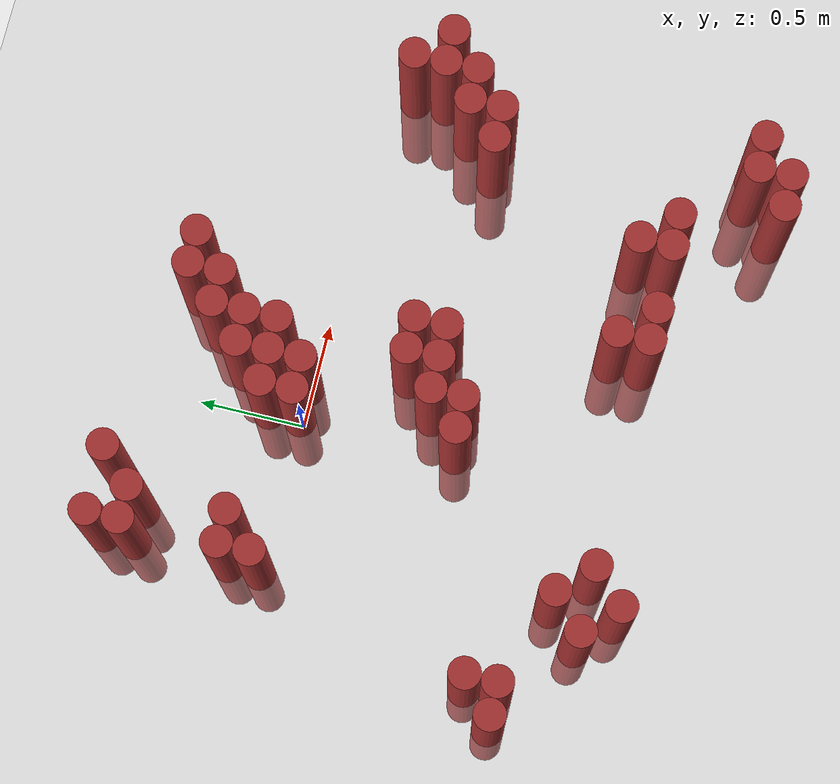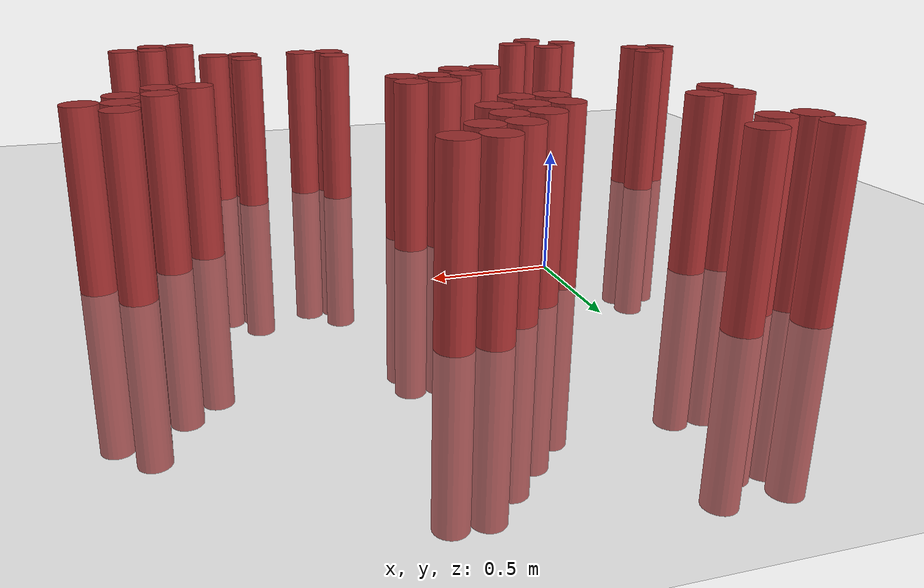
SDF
<sdf version="1.6">
 <world name="default">
  <model name="ground_plane">
   <static>1</static>
   <link name="link">
    <collision name="collision">
     <geometry><plane><normal>0 0 1</normal><size>100 100</size></plane></geometry>
     <surface><friction><ode><mu>100</mu><mu2>50</mu2></ode></friction></surface>
    </collision>
    <visual name="visual">
     <cast_shadows>0</cast_shadows>
     <geometry><plane><normal>0 0 1</normal><size>100 100</size></plane></geometry>
     <material>
      <script><uri>file://media/materials/scripts/gazebo.material</uri><name>Gazebo/Grey</name></script>
     </material>
    </visual>
   </link>
  </model>
  <model name="unit_cylinder_322">
   <static>1</static>
   <pose>-1.175000 -1.175000 0.000000 0.000000 0.000000 0.000000</pose>
   <link name="link">
    <inertial>
     <mass>1</mass>
     <inertia><ixx>0.145833</ixx><ixy>0</ixy><ixz>0</ixz><iyy>0.145833</iyy><iyz>0</iyz><izz>0.125</izz></inertia>
    </inertial>
    <collision name="collision">
     <geometry><cylinder><radius>0.075000</radius><length>1.5</length></cylinder></geometry>
    </collision>
    <visual name="visual">
     <geometry><cylinder><radius>0.075000</radius><length>1.5</length></cylinder></geometry>
     <material>
      <ambient>0.648000 0.192000 0.192000 1</ambient>
      <diffuse>0.648000 0.192000 0.192000 1</diffuse>
     </material>
     <material>
      <script><name>Gazebo/Grey</name><uri>file://media/materials/scripts/gazebo.material</uri></script>
     </material>
    </visual>
   </link>
  </model>
  <model name="unit_cylinder_326">
   <static>1</static>
   <pose>-1.025000 -1.175000 0.000000 0.000000 0.000000 0.000000</pose>
   <link name="link">
    <inertial>
     <mass>1</mass>
     <inertia><ixx>0.145833</ixx><ixy>0</ixy><ixz>0</ixz><iyy>0.145833</iyy><iyz>0</iyz><izz>0.125</izz></inertia>
    </inertial>
    <collision name="collision">
     <geometry><cylinder><radius>0.075000</radius><length>1.5</length></cylinder></geometry>
    </collision>
    <visual name="visual">
     <geometry><cylinder><radius>0.075000</radius><length>1.5</length></cylinder></geometry>
     <material>
      <ambient>0.648000 0.192000 0.192000 1</ambient>
      <diffuse>0.648000 0.192000 0.192000 1</diffuse>
     </material>
     <material>
      <script><name>Gazebo/Grey</name><uri>file://media/materials/scripts/gazebo.material</uri></script>
     </material>
    </visual>
   </link>
  </model>
  <model name="unit_cylinder_327">
   <static>1</static>
   <pose>-1.025000 -1.025000 0.000000 0.000000 0.000000 0.000000</pose>
   <link name="link">
    <inertial>
     <mass>1</mass>
     <inertia><ixx>0.145833</ixx><ixy>0</ixy><ixz>0</ixz><iyy>0.145833</iyy><iyz>0</iyz><izz>0.125</izz></inertia>
    </inertial>
    <collision name="collision">
     <geometry><cylinder><radius>0.075000</radius><length>1.5</length></cylinder></geometry>
    </collision>
    <visual name="visual">
     <geometry><cylinder><radius>0.075000</radius><length>1.5</length></cylinder></geometry>
     <material>
      <ambient>0.648000 0.192000 0.192000 1</ambient>
      <diffuse>0.648000 0.192000 0.192000 1</diffuse>
     </material>
     <material>
      <script><name>Gazebo/Grey</name><uri>file://media/materials/scripts/gazebo.material</uri></script>
     </material>
    </visual>
   </link>
  </model>
  <model name="unit_cylinder_334">
   <static>1</static>
   <pose>-0.725000 -1.475000 0.000000 0.000000 0.000000 0.000000</pose>
   <link name="link">
    <inertial>
     <mass>1</mass>
     <inertia><ixx>0.145833</ixx><ixy>0</ixy><ixz>0</ixz><iyy>0.145833</iyy><iyz>0</iyz><izz>0.125</izz></inertia>
    </inertial>
    <collision name="collision">
     <geometry><cylinder><radius>0.075000</radius><length>1.5</length></cylinder></geometry>
    </collision>
    <visual name="visual">
     <geometry><cylinder><radius>0.075000</radius><length>1.5</length></cylinder></geometry>
     <material>
      <ambient>0.648000 0.192000 0.192000 1</ambient>
      <diffuse>0.648000 0.192000 0.192000 1</diffuse>
     </material>
     <material>
      <script><name>Gazebo/Grey</name><uri>file://media/materials/scripts/gazebo.material</uri></script>
     </material>
    </visual>
   </link>
  </model>
  <model name="unit_cylinder_335">
   <static>1</static>
   <pose>-0.725000 0.025000 0.000000 0.000000 0.000000 0.000000</pose>
   <link name="link">
    <inertial>
     <mass>1</mass>
     <inertia><ixx>0.145833</ixx><ixy>0</ixy><ixz>0</ixz><iyy>0.145833</iyy><iyz>0</iyz><izz>0.125</izz></inertia>
    </inertial>
    <collision name="collision">
     <geometry><cylinder><radius>0.075000</radius><length>1.5</length></cylinder></geometry>
    </collision>
    <visual name="visual">
     <geometry><cylinder><radius>0.075000</radius><length>1.5</length></cylinder></geometry>
     <material>
      <ambient>0.648000 0.192000 0.192000 1</ambient>
      <diffuse>0.648000 0.192000 0.192000 1</diffuse>
     </material>
     <material>
      <script><name>Gazebo/Grey</name><uri>file://media/materials/scripts/gazebo.material</uri></script>
     </material>
    </visual>
   </link>
  </model>
  <model name="unit_cylinder_336">
   <static>1</static>
   <pose>-0.725000 0.175000 0.000000 0.000000 0.000000 0.000000</pose>
   <link name="link">
    <inertial>
     <mass>1</mass>
     <inertia><ixx>0.145833</ixx><ixy>0</ixy><ixz>0</ixz><iyy>0.145833</iyy><iyz>0</iyz><izz>0.125</izz></inertia>
    </inertial>
    <collision name="collision">
     <geometry><cylinder><radius>0.075000</radius><length>1.5</length></cylinder></geometry>
    </collision>
    <visual name="visual">
     <geometry><cylinder><radius>0.075000</radius><length>1.5</length></cylinder></geometry>
     <material>
      <ambient>0.648000 0.192000 0.192000 1</ambient>
      <diffuse>0.648000 0.192000 0.192000 1</diffuse>
     </material>
     <material>
      <script><name>Gazebo/Grey</name><uri>file://media/materials/scripts/gazebo.material</uri></script>
     </material>
    </visual>
   </link>
  </model>
  <model name="unit_cylinder_337">
   <static>1</static>
   <pose>-0.725000 0.625000 0.000000 0.000000 0.000000 0.000000</pose>
   <link name="link">
    <inertial>
     <mass>1</mass>
     <inertia><ixx>0.145833</ixx><ixy>0</ixy><ixz>0</ixz><iyy>0.145833</iyy><iyz>0</iyz><izz>0.125</izz></inertia>
    </inertial>
    <collision name="collision">
     <geometry><cylinder><radius>0.075000</radius><length>1.5</length></cylinder></geometry>
    </collision>
    <visual name="visual">
     <geometry><cylinder><radius>0.075000</radius><length>1.5</length></cylinder></geometry>
     <material>
      <ambient>0.648000 0.192000 0.192000 1</ambient>
      <diffuse>0.648000 0.192000 0.192000 1</diffuse>
     </material>
     <material>
      <script><name>Gazebo/Grey</name><uri>file://media/materials/scripts/gazebo.material</uri></script>
     </material>
    </visual>
   </link>
  </model>
  <model name="unit_cylinder_338">
   <static>1</static>
   <pose>-0.725000 0.775000 0.000000 0.000000 0.000000 0.000000</pose>
   <link name="link">
    <inertial>
     <mass>1</mass>
     <inertia><ixx>0.145833</ixx><ixy>0</ixy><ixz>0</ixz><iyy>0.145833</iyy><iyz>0</iyz><izz>0.125</izz></inertia>
    </inertial>
    <collision name="collision">
     <geometry><cylinder><radius>0.075000</radius><length>1.5</length></cylinder></geometry>
    </collision>
    <visual name="visual">
     <geometry><cylinder><radius>0.075000</radius><length>1.5</length></cylinder></geometry>
     <material>
      <ambient>0.648000 0.192000 0.192000 1</ambient>
      <diffuse>0.648000 0.192000 0.192000 1</diffuse>
     </material>
     <material>
      <script><name>Gazebo/Grey</name><uri>file://media/materials/scripts/gazebo.material</uri></script>
     </material>
    </visual>
   </link>
  </model>
  <model name="unit_cylinder_343">
   <static>1</static>
   <pose>-0.575000 -1.625000 0.000000 0.000000 0.000000 0.000000</pose>
   <link name="link">
    <inertial>
     <mass>1</mass>
     <inertia><ixx>0.145833</ixx><ixy>0</ixy><ixz>0</ixz><iyy>0.145833</iyy><iyz>0</iyz><izz>0.125</izz></inertia>
    </inertial>
    <collision name="collision">
     <geometry><cylinder><radius>0.075000</radius><length>1.5</length></cylinder></geometry>
    </collision>
    <visual name="visual">
     <geometry><cylinder><radius>0.075000</radius><length>1.5</length></cylinder></geometry>
     <material>
      <ambient>0.648000 0.192000 0.192000 1</ambient>
      <diffuse>0.648000 0.192000 0.192000 1</diffuse>
     </material>
     <material>
      <script><name>Gazebo/Grey</name><uri>file://media/materials/scripts/gazebo.material</uri></script>
     </material>
    </visual>
   </link>
  </model>
  <model name="unit_cylinder_344">
   <static>1</static>
   <pose>-0.575000 -1.325000 0.000000 0.000000 0.000000 0.000000</pose>
   <link name="link">
    <inertial>
     <mass>1</mass>
     <inertia><ixx>0.145833</ixx><ixy>0</ixy><ixz>0</ixz><iyy>0.145833</iyy><iyz>0</iyz><izz>0.125</izz></inertia>
    </inertial>
    <collision name="collision">
     <geometry><cylinder><radius>0.075000</radius><length>1.5</length></cylinder></geometry>
    </collision>
    <visual name="visual">
     <geometry><cylinder><radius>0.075000</radius><length>1.5</length></cylinder></geometry>
     <material>
      <ambient>0.648000 0.192000 0.192000 1</ambient>
      <diffuse>0.648000 0.192000 0.192000 1</diffuse>
     </material>
     <material>
      <script><name>Gazebo/Grey</name><uri>file://media/materials/scripts/gazebo.material</uri></script>
     </material>
    </visual>
   </link>
  </model>
  <model name="unit_cylinder_345">
   <static>1</static>
   <pose>-0.575000 0.175000 0.000000 0.000000 0.000000 0.000000</pose>
   <link name="link">
    <inertial>
     <mass>1</mass>
     <inertia><ixx>0.145833</ixx><ixy>0</ixy><ixz>0</ixz><iyy>0.145833</iyy><iyz>0</iyz><izz>0.125</izz></inertia>
    </inertial>
    <collision name="collision">
     <geometry><cylinder><radius>0.075000</radius><length>1.5</length></cylinder></geometry>
    </collision>
    <visual name="visual">
     <geometry><cylinder><radius>0.075000</radius><length>1.5</length></cylinder></geometry>
     <material>
      <ambient>0.648000 0.192000 0.192000 1</ambient>
      <diffuse>0.648000 0.192000 0.192000 1</diffuse>
     </material>
     <material>
      <script><name>Gazebo/Grey</name><uri>file://media/materials/scripts/gazebo.material</uri></script>
     </material>
    </visual>
   </link>
  </model>
  <model name="unit_cylinder_346">
   <static>1</static>
   <pose>-0.575000 0.625000 0.000000 0.000000 0.000000 0.000000</pose>
   <link name="link">
    <inertial>
     <mass>1</mass>
     <inertia><ixx>0.145833</ixx><ixy>0</ixy><ixz>0</ixz><iyy>0.145833</iyy><iyz>0</iyz><izz>0.125</izz></inertia>
    </inertial>
    <collision name="collision">
     <geometry><cylinder><radius>0.075000</radius><length>1.5</length></cylinder></geometry>
    </collision>
    <visual name="visual">
     <geometry><cylinder><radius>0.075000</radius><length>1.5</length></cylinder></geometry>
     <material>
      <ambient>0.648000 0.192000 0.192000 1</ambient>
      <diffuse>0.648000 0.192000 0.192000 1</diffuse>
     </material>
     <material>
      <script><name>Gazebo/Grey</name><uri>file://media/materials/scripts/gazebo.material</uri></script>
     </material>
    </visual>
   </link>
  </model>
  <model name="unit_cylinder_351">
   <static>1</static>
   <pose>-0.425000 -1.475000 0.000000 0.000000 0.000000 0.000000</pose>
   <link name="link">
    <inertial>
     <mass>1</mass>
     <inertia><ixx>0.145833</ixx><ixy>0</ixy><ixz>0</ixz><iyy>0.145833</iyy><iyz>0</iyz><izz>0.125</izz></inertia>
    </inertial>
    <collision name="collision">
     <geometry><cylinder><radius>0.075000</radius><length>1.5</length></cylinder></geometry>
    </collision>
    <visual name="visual">
     <geometry><cylinder><radius>0.075000</radius><length>1.5</length></cylinder></geometry>
     <material>
      <ambient>0.648000 0.192000 0.192000 1</ambient>
      <diffuse>0.648000 0.192000 0.192000 1</diffuse>
     </material>
     <material>
      <script><name>Gazebo/Grey</name><uri>file://media/materials/scripts/gazebo.material</uri></script>
     </material>
    </visual>
   </link>
  </model>
  <model name="unit_cylinder_352">
   <static>1</static>
   <pose>-0.425000 0.775000 0.000000 0.000000 0.000000 0.000000</pose>
   <link name="link">
    <inertial>
     <mass>1</mass>
     <inertia><ixx>0.145833</ixx><ixy>0</ixy><ixz>0</ixz><iyy>0.145833</iyy><iyz>0</iyz><izz>0.125</izz></inertia>
    </inertial>
    <collision name="collision">
     <geometry><cylinder><radius>0.075000</radius><length>1.5</length></cylinder></geometry>
    </collision>
    <visual name="visual">
     <geometry><cylinder><radius>0.075000</radius><length>1.5</length></cylinder></geometry>
     <material>
      <ambient>0.648000 0.192000 0.192000 1</ambient>
      <diffuse>0.648000 0.192000 0.192000 1</diffuse>
     </material>
     <material>
      <script><name>Gazebo/Grey</name><uri>file://media/materials/scripts/gazebo.material</uri></script>
     </material>
    </visual>
   </link>
  </model>
  <model name="unit_cylinder_361">
   <static>1</static>
   <pose>0.025000 -0.725000 0.000000 0.000000 0.000000 0.000000</pose>
   <link name="link">
    <inertial>
     <mass>1</mass>
     <inertia><ixx>0.145833</ixx><ixy>0</ixy><ixz>0</ixz><iyy>0.145833</iyy><iyz>0</iyz><izz>0.125</izz></inertia>
    </inertial>
    <collision name="collision">
     <geometry><cylinder><radius>0.075000</radius><length>1.5</length></cylinder></geometry>
    </collision>
    <visual name="visual">
     <geometry><cylinder><radius>0.075000</radius><length>1.5</length></cylinder></geometry>
     <material>
      <ambient>0.648000 0.192000 0.192000 1</ambient>
      <diffuse>0.648000 0.192000 0.192000 1</diffuse>
     </material>
     <material>
      <script><name>Gazebo/Grey</name><uri>file://media/materials/scripts/gazebo.material</uri></script>
     </material>
    </visual>
   </link>
  </model>
  <model name="unit_cylinder_362">
   <static>1</static>
   <pose>0.025000 0.025000 0.000000 0.000000 0.000000 0.000000</pose>
   <link name="link">
    <inertial>
     <mass>1</mass>
     <inertia><ixx>0.145833</ixx><ixy>0</ixy><ixz>0</ixz><iyy>0.145833</iyy><iyz>0</iyz><izz>0.125</izz></inertia>
    </inertial>
    <collision name="collision">
     <geometry><cylinder><radius>0.075000</radius><length>1.5</length></cylinder></geometry>
    </collision>
    <visual name="visual">
     <geometry><cylinder><radius>0.075000</radius><length>1.5</length></cylinder></geometry>
     <material>
      <ambient>0.648000 0.192000 0.192000 1</ambient>
      <diffuse>0.648000 0.192000 0.192000 1</diffuse>
     </material>
     <material>
      <script><name>Gazebo/Grey</name><uri>file://media/materials/scripts/gazebo.material</uri></script>
     </material>
    </visual>
   </link>
  </model>
  <model name="unit_cylinder_363">
   <static>1</static>
   <pose>0.025000 0.175000 0.000000 0.000000 0.000000 0.000000</pose>
   <link name="link">
    <inertial>
     <mass>1</mass>
     <inertia><ixx>0.145833</ixx><ixy>0</ixy><ixz>0</ixz><iyy>0.145833</iyy><iyz>0</iyz><izz>0.125</izz></inertia>
    </inertial>
    <collision name="collision">
     <geometry><cylinder><radius>0.075000</radius><length>1.5</length></cylinder></geometry>
    </collision>
    <visual name="visual">
     <geometry><cylinder><radius>0.075000</radius><length>1.5</length></cylinder></geometry>
     <material>
      <ambient>0.648000 0.192000 0.192000 1</ambient>
      <diffuse>0.648000 0.192000 0.192000 1</diffuse>
     </material>
     <material>
      <script><name>Gazebo/Grey</name><uri>file://media/materials/scripts/gazebo.material</uri></script>
     </material>
    </visual>
   </link>
  </model>
  <model name="unit_cylinder_364">
   <static>1</static>
   <pose>0.175000 -0.725000 0.000000 0.000000 0.000000 0.000000</pose>
   <link name="link">
    <inertial>
     <mass>1</mass>
     <inertia><ixx>0.145833</ixx><ixy>0</ixy><ixz>0</ixz><iyy>0.145833</iyy><iyz>0</iyz><izz>0.125</izz></inertia>
    </inertial>
    <collision name="collision">
     <geometry><cylinder><radius>0.075000</radius><length>1.5</length></cylinder></geometry>
    </collision>
    <visual name="visual">
     <geometry><cylinder><radius>0.075000</radius><length>1.5</length></cylinder></geometry>
     <material>
      <ambient>0.648000 0.192000 0.192000 1</ambient>
      <diffuse>0.648000 0.192000 0.192000 1</diffuse>
     </material>
     <material>
      <script><name>Gazebo/Grey</name><uri>file://media/materials/scripts/gazebo.material</uri></script>
     </material>
    </visual>
   </link>
  </model>
  <model name="unit_cylinder_365">
   <static>1</static>
   <pose>0.175000 -0.575000 0.000000 0.000000 0.000000 0.000000</pose>
   <link name="link">
    <inertial>
     <mass>1</mass>
     <inertia><ixx>0.145833</ixx><ixy>0</ixy><ixz>0</ixz><iyy>0.145833</iyy><iyz>0</iyz><izz>0.125</izz></inertia>
    </inertial>
    <collision name="collision">
     <geometry><cylinder><radius>0.075000</radius><length>1.5</length></cylinder></geometry>
    </collision>
    <visual name="visual">
     <geometry><cylinder><radius>0.075000</radius><length>1.5</length></cylinder></geometry>
     <material>
      <ambient>0.648000 0.192000 0.192000 1</ambient>
      <diffuse>0.648000 0.192000 0.192000 1</diffuse>
     </material>
     <material>
      <script><name>Gazebo/Grey</name><uri>file://media/materials/scripts/gazebo.material</uri></script>
     </material>
    </visual>
   </link>
  </model>
  <model name="unit_cylinder_366">
   <static>1</static>
   <pose>0.175000 0.025000 0.000000 0.000000 0.000000 0.000000</pose>
   <link name="link">
    <inertial>
     <mass>1</mass>
     <inertia><ixx>0.145833</ixx><ixy>0</ixy><ixz>0</ixz><iyy>0.145833</iyy><iyz>0</iyz><izz>0.125</izz></inertia>
    </inertial>
    <collision name="collision">
     <geometry><cylinder><radius>0.075000</radius><length>1.5</length></cylinder></geometry>
    </collision>
    <visual name="visual">
     <geometry><cylinder><radius>0.075000</radius><length>1.5</length></cylinder></geometry>
     <material>
      <ambient>0.648000 0.192000 0.192000 1</ambient>
      <diffuse>0.648000 0.192000 0.192000 1</diffuse>
     </material>
     <material>
      <script><name>Gazebo/Grey</name><uri>file://media/materials/scripts/gazebo.material</uri></script>
     </material>
    </visual>
   </link>
  </model>
  <model name="unit_cylinder_367">
   <static>1</static>
   <pose>0.175000 0.175000 0.000000 0.000000 0.000000 0.000000</pose>
   <link name="link">
    <inertial>
     <mass>1</mass>
     <inertia><ixx>0.145833</ixx><ixy>0</ixy><ixz>0</ixz><iyy>0.145833</iyy><iyz>0</iyz><izz>0.125</izz></inertia>
    </inertial>
    <collision name="collision">
     <geometry><cylinder><radius>0.075000</radius><length>1.5</length></cylinder></geometry>
    </collision>
    <visual name="visual">
     <geometry><cylinder><radius>0.075000</radius><length>1.5</length></cylinder></geometry>
     <material>
      <ambient>0.648000 0.192000 0.192000 1</ambient>
      <diffuse>0.648000 0.192000 0.192000 1</diffuse>
     </material>
     <material>
      <script><name>Gazebo/Grey</name><uri>file://media/materials/scripts/gazebo.material</uri></script>
     </material>
    </visual>
   </link>
  </model>
  <model name="unit_cylinder_368">
   <static>1</static>
   <pose>0.175000 0.325000 0.000000 0.000000 0.000000 0.000000</pose>
   <link name="link">
    <inertial>
     <mass>1</mass>
     <inertia><ixx>0.145833</ixx><ixy>0</ixy><ixz>0</ixz><iyy>0.145833</iyy><iyz>0</iyz><izz>0.125</izz></inertia>
    </inertial>
    <collision name="collision">
     <geometry><cylinder><radius>0.075000</radius><length>1.5</length></cylinder></geometry>
    </collision>
    <visual name="visual">
     <geometry><cylinder><radius>0.075000</radius><length>1.5</length></cylinder></geometry>
     <material>
      <ambient>0.648000 0.192000 0.192000 1</ambient>
      <diffuse>0.648000 0.192000 0.192000 1</diffuse>
     </material>
     <material>
      <script><name>Gazebo/Grey</name><uri>file://media/materials/scripts/gazebo.material</uri></script>
     </material>
    </visual>
   </link>
  </model>
  <model name="unit_cylinder_371">
   <static>1</static>
   <pose>0.325000 -0.575000 0.000000 0.000000 0.000000 0.000000</pose>
   <link name="link">
    <inertial>
     <mass>1</mass>
     <inertia><ixx>0.145833</ixx><ixy>0</ixy><ixz>0</ixz><iyy>0.145833</iyy><iyz>0</iyz><izz>0.125</izz></inertia>
    </inertial>
    <collision name="collision">
     <geometry><cylinder><radius>0.075000</radius><length>1.5</length></cylinder></geometry>
    </collision>
    <visual name="visual">
     <geometry><cylinder><radius>0.075000</radius><length>1.5</length></cylinder></geometry>
     <material>
      <ambient>0.648000 0.192000 0.192000 1</ambient>
      <diffuse>0.648000 0.192000 0.192000 1</diffuse>
     </material>
     <material>
      <script><name>Gazebo/Grey</name><uri>file://media/materials/scripts/gazebo.material</uri></script>
     </material>
    </visual>
   </link>
  </model>
  <model name="unit_cylinder_372">
   <static>1</static>
   <pose>0.325000 -0.425000 0.000000 0.000000 0.000000 0.000000</pose>
   <link name="link">
    <inertial>
     <mass>1</mass>
     <inertia><ixx>0.145833</ixx><ixy>0</ixy><ixz>0</ixz><iyy>0.145833</iyy><iyz>0</iyz><izz>0.125</izz></inertia>
    </inertial>
    <collision name="collision">
     <geometry><cylinder><radius>0.075000</radius><length>1.5</length></cylinder></geometry>
    </collision>
    <visual name="visual">
     <geometry><cylinder><radius>0.075000</radius><length>1.5</length></cylinder></geometry>
     <material>
      <ambient>0.648000 0.192000 0.192000 1</ambient>
      <diffuse>0.648000 0.192000 0.192000 1</diffuse>
     </material>
     <material>
      <script><name>Gazebo/Grey</name><uri>file://media/materials/scripts/gazebo.material</uri></script>
     </material>
    </visual>
   </link>
  </model>
  <model name="unit_cylinder_373">
   <static>1</static>
   <pose>0.325000 0.175000 0.000000 0.000000 0.000000 0.000000</pose>
   <link name="link">
    <inertial>
     <mass>1</mass>
     <inertia><ixx>0.145833</ixx><ixy>0</ixy><ixz>0</ixz><iyy>0.145833</iyy><iyz>0</iyz><izz>0.125</izz></inertia>
    </inertial>
    <collision name="collision">
     <geometry><cylinder><radius>0.075000</radius><length>1.5</length></cylinder></geometry>
    </collision>
    <visual name="visual">
     <geometry><cylinder><radius>0.075000</radius><length>1.5</length></cylinder></geometry>
     <material>
      <ambient>0.648000 0.192000 0.192000 1</ambient>
      <diffuse>0.648000 0.192000 0.192000 1</diffuse>
     </material>
     <material>
      <script><name>Gazebo/Grey</name><uri>file://media/materials/scripts/gazebo.material</uri></script>
     </material>
    </visual>
   </link>
  </model>
  <model name="unit_cylinder_374">
   <static>1</static>
   <pose>0.325000 0.325000 0.000000 0.000000 0.000000 0.000000</pose>
   <link name="link">
    <inertial>
     <mass>1</mass>
     <inertia><ixx>0.145833</ixx><ixy>0</ixy><ixz>0</ixz><iyy>0.145833</iyy><iyz>0</iyz><izz>0.125</izz></inertia>
    </inertial>
    <collision name="collision">
     <geometry><cylinder><radius>0.075000</radius><length>1.5</length></cylinder></geometry>
    </collision>
    <visual name="visual">
     <geometry><cylinder><radius>0.075000</radius><length>1.5</length></cylinder></geometry>
     <material>
      <ambient>0.648000 0.192000 0.192000 1</ambient>
      <diffuse>0.648000 0.192000 0.192000 1</diffuse>
     </material>
     <material>
      <script><name>Gazebo/Grey</name><uri>file://media/materials/scripts/gazebo.material</uri></script>
     </material>
    </visual>
   </link>
  </model>
  <model name="unit_cylinder_375">
   <static>1</static>
   <pose>0.325000 0.475000 0.000000 0.000000 0.000000 0.000000</pose>
   <link name="link">
    <inertial>
     <mass>1</mass>
     <inertia><ixx>0.145833</ixx><ixy>0</ixy><ixz>0</ixz><iyy>0.145833</iyy><iyz>0</iyz><izz>0.125</izz></inertia>
    </inertial>
    <collision name="collision">
     <geometry><cylinder><radius>0.075000</radius><length>1.5</length></cylinder></geometry>
    </collision>
    <visual name="visual">
     <geometry><cylinder><radius>0.075000</radius><length>1.5</length></cylinder></geometry>
     <material>
      <ambient>0.648000 0.192000 0.192000 1</ambient>
      <diffuse>0.648000 0.192000 0.192000 1</diffuse>
     </material>
     <material>
      <script><name>Gazebo/Grey</name><uri>file://media/materials/scripts/gazebo.material</uri></script>
     </material>
    </visual>
   </link>
  </model>
  <model name="unit_cylinder_380">
   <static>1</static>
   <pose>0.475000 -0.575000 0.000000 0.000000 0.000000 0.000000</pose>
   <link name="link">
    <inertial>
     <mass>1</mass>
     <inertia><ixx>0.145833</ixx><ixy>0</ixy><ixz>0</ixz><iyy>0.145833</iyy><iyz>0</iyz><izz>0.125</izz></inertia>
    </inertial>
    <collision name="collision">
     <geometry><cylinder><radius>0.075000</radius><length>1.5</length></cylinder></geometry>
    </collision>
    <visual name="visual">
     <geometry><cylinder><radius>0.075000</radius><length>1.5</length></cylinder></geometry>
     <material>
      <ambient>0.648000 0.192000 0.192000 1</ambient>
      <diffuse>0.648000 0.192000 0.192000 1</diffuse>
     </material>
     <material>
      <script><name>Gazebo/Grey</name><uri>file://media/materials/scripts/gazebo.material</uri></script>
     </material>
    </visual>
   </link>
  </model>
  <model name="unit_cylinder_381">
   <static>1</static>
   <pose>0.475000 -0.425000 0.000000 0.000000 0.000000 0.000000</pose>
   <link name="link">
    <inertial>
     <mass>1</mass>
     <inertia><ixx>0.145833</ixx><ixy>0</ixy><ixz>0</ixz><iyy>0.145833</iyy><iyz>0</iyz><izz>0.125</izz></inertia>
    </inertial>
    <collision name="collision">
     <geometry><cylinder><radius>0.075000</radius><length>1.5</length></cylinder></geometry>
    </collision>
    <visual name="visual">
     <geometry><cylinder><radius>0.075000</radius><length>1.5</length></cylinder></geometry>
     <material>
      <ambient>0.648000 0.192000 0.192000 1</ambient>
      <diffuse>0.648000 0.192000 0.192000 1</diffuse>
     </material>
     <material>
      <script><name>Gazebo/Grey</name><uri>file://media/materials/scripts/gazebo.material</uri></script>
     </material>
    </visual>
   </link>
  </model>
  <model name="unit_cylinder_382">
   <static>1</static>
   <pose>0.475000 0.475000 0.000000 0.000000 0.000000 0.000000</pose>
   <link name="link">
    <inertial>
     <mass>1</mass>
     <inertia><ixx>0.145833</ixx><ixy>0</ixy><ixz>0</ixz><iyy>0.145833</iyy><iyz>0</iyz><izz>0.125</izz></inertia>
    </inertial>
    <collision name="collision">
     <geometry><cylinder><radius>0.075000</radius><length>1.5</length></cylinder></geometry>
    </collision>
    <visual name="visual">
     <geometry><cylinder><radius>0.075000</radius><length>1.5</length></cylinder></geometry>
     <material>
      <ambient>0.648000 0.192000 0.192000 1</ambient>
      <diffuse>0.648000 0.192000 0.192000 1</diffuse>
     </material>
     <material>
      <script><name>Gazebo/Grey</name><uri>file://media/materials/scripts/gazebo.material</uri></script>
     </material>
    </visual>
   </link>
  </model>
  <model name="unit_cylinder_383">
   <static>1</static>
   <pose>0.475000 0.625000 0.000000 0.000000 0.000000 0.000000</pose>
   <link name="link">
    <inertial>
     <mass>1</mass>
     <inertia><ixx>0.145833</ixx><ixy>0</ixy><ixz>0</ixz><iyy>0.145833</iyy><iyz>0</iyz><izz>0.125</izz></inertia>
    </inertial>
    <collision name="collision">
     <geometry><cylinder><radius>0.075000</radius><length>1.5</length></cylinder></geometry>
    </collision>
    <visual name="visual">
     <geometry><cylinder><radius>0.075000</radius><length>1.5</length></cylinder></geometry>
     <material>
      <ambient>0.648000 0.192000 0.192000 1</ambient>
      <diffuse>0.648000 0.192000 0.192000 1</diffuse>
     </material>
     <material>
      <script><name>Gazebo/Grey</name><uri>file://media/materials/scripts/gazebo.material</uri></script>
     </material>
    </visual>
   </link>
  </model>
  <model name="unit_cylinder_385">
   <static>1</static>
   <pose>0.625000 -1.475000 0.000000 0.000000 0.000000 0.000000</pose>
   <link name="link">
    <inertial>
     <mass>1</mass>
     <inertia><ixx>0.145833</ixx><ixy>0</ixy><ixz>0</ixz><iyy>0.145833</iyy><iyz>0</iyz><izz>0.125</izz></inertia>
    </inertial>
    <collision name="collision">
     <geometry><cylinder><radius>0.075000</radius><length>1.5</length></cylinder></geometry>
    </collision>
    <visual name="visual">
     <geometry><cylinder><radius>0.075000</radius><length>1.5</length></cylinder></geometry>
     <material>
      <ambient>0.648000 0.192000 0.192000 1</ambient>
      <diffuse>0.648000 0.192000 0.192000 1</diffuse>
     </material>
     <material>
      <script><name>Gazebo/Grey</name><uri>file://media/materials/scripts/gazebo.material</uri></script>
     </material>
    </visual>
   </link>
  </model>
  <model name="unit_cylinder_386">
   <static>1</static>
   <pose>0.625000 -1.325000 0.000000 0.000000 0.000000 0.000000</pose>
   <link name="link">
    <inertial>
     <mass>1</mass>
     <inertia><ixx>0.145833</ixx><ixy>0</ixy><ixz>0</ixz><iyy>0.145833</iyy><iyz>0</iyz><izz>0.125</izz></inertia>
    </inertial>
    <collision name="collision">
     <geometry><cylinder><radius>0.075000</radius><length>1.5</length></cylinder></geometry>
    </collision>
    <visual name="visual">
     <geometry><cylinder><radius>0.075000</radius><length>1.5</length></cylinder></geometry>
     <material>
      <ambient>0.648000 0.192000 0.192000 1</ambient>
      <diffuse>0.648000 0.192000 0.192000 1</diffuse>
     </material>
     <material>
      <script><name>Gazebo/Grey</name><uri>file://media/materials/scripts/gazebo.material</uri></script>
     </material>
    </visual>
   </link>
  </model>
  <model name="unit_cylinder_387">
   <static>1</static>
   <pose>0.625000 0.625000 0.000000 0.000000 0.000000 0.000000</pose>
   <link name="link">
    <inertial>
     <mass>1</mass>
     <inertia><ixx>0.145833</ixx><ixy>0</ixy><ixz>0</ixz><iyy>0.145833</iyy><iyz>0</iyz><izz>0.125</izz></inertia>
    </inertial>
    <collision name="collision">
     <geometry><cylinder><radius>0.075000</radius><length>1.5</length></cylinder></geometry>
    </collision>
    <visual name="visual">
     <geometry><cylinder><radius>0.075000</radius><length>1.5</length></cylinder></geometry>
     <material>
      <ambient>0.648000 0.192000 0.192000 1</ambient>
      <diffuse>0.648000 0.192000 0.192000 1</diffuse>
     </material>
     <material>
      <script><name>Gazebo/Grey</name><uri>file://media/materials/scripts/gazebo.material</uri></script>
     </material>
    </visual>
   </link>
  </model>
  <model name="unit_cylinder_390">
   <static>1</static>
   <pose>0.775000 -1.475000 0.000000 0.000000 0.000000 0.000000</pose>
   <link name="link">
    <inertial>
     <mass>1</mass>
     <inertia><ixx>0.145833</ixx><ixy>0</ixy><ixz>0</ixz><iyy>0.145833</iyy><iyz>0</iyz><izz>0.125</izz></inertia>
    </inertial>
    <collision name="collision">
     <geometry><cylinder><radius>0.075000</radius><length>1.5</length></cylinder></geometry>
    </collision>
    <visual name="visual">
     <geometry><cylinder><radius>0.075000</radius><length>1.5</length></cylinder></geometry>
     <material>
      <ambient>0.648000 0.192000 0.192000 1</ambient>
      <diffuse>0.648000 0.192000 0.192000 1</diffuse>
     </material>
     <material>
      <script><name>Gazebo/Grey</name><uri>file://media/materials/scripts/gazebo.material</uri></script>
     </material>
    </visual>
   </link>
  </model>
  <model name="unit_cylinder_392">
   <static>1</static>
   <pose>1.075000 -1.475000 0.000000 0.000000 0.000000 0.000000</pose>
   <link name="link">
    <inertial>
     <mass>1</mass>
     <inertia><ixx>0.145833</ixx><ixy>0</ixy><ixz>0</ixz><iyy>0.145833</iyy><iyz>0</iyz><izz>0.125</izz></inertia>
    </inertial>
    <collision name="collision">
     <geometry><cylinder><radius>0.075000</radius><length>1.5</length></cylinder></geometry>
    </collision>
    <visual name="visual">
     <geometry><cylinder><radius>0.075000</radius><length>1.5</length></cylinder></geometry>
     <material>
      <ambient>0.648000 0.192000 0.192000 1</ambient>
      <diffuse>0.648000 0.192000 0.192000 1</diffuse>
     </material>
     <material>
      <script><name>Gazebo/Grey</name><uri>file://media/materials/scripts/gazebo.material</uri></script>
     </material>
    </visual>
   </link>
  </model>
  <model name="unit_cylinder_393">
   <static>1</static>
   <pose>1.075000 -1.325000 0.000000 0.000000 0.000000 0.000000</pose>
   <link name="link">
    <inertial>
     <mass>1</mass>
     <inertia><ixx>0.145833</ixx><ixy>0</ixy><ixz>0</ixz><iyy>0.145833</iyy><iyz>0</iyz><izz>0.125</izz></inertia>
    </inertial>
    <collision name="collision">
     <geometry><cylinder><radius>0.075000</radius><length>1.5</length></cylinder></geometry>
    </collision>
    <visual name="visual">
     <geometry><cylinder><radius>0.075000</radius><length>1.5</length></cylinder></geometry>
     <material>
      <ambient>0.648000 0.192000 0.192000 1</ambient>
      <diffuse>0.648000 0.192000 0.192000 1</diffuse>
     </material>
     <material>
      <script><name>Gazebo/Grey</name><uri>file://media/materials/scripts/gazebo.material</uri></script>
     </material>
    </visual>
   </link>
  </model>
  <model name="unit_cylinder_397">
   <static>1</static>
   <pose>1.225000 -1.475000 0.000000 0.000000 0.000000 0.000000</pose>
   <link name="link">
    <inertial>
     <mass>1</mass>
     <inertia><ixx>0.145833</ixx><ixy>0</ixy><ixz>0</ixz><iyy>0.145833</iyy><iyz>0</iyz><izz>0.125</izz></inertia>
    </inertial>
    <collision name="collision">
     <geometry><cylinder><radius>0.075000</radius><length>1.5</length></cylinder></geometry>
    </collision>
    <visual name="visual">
     <geometry><cylinder><radius>0.075000</radius><length>1.5</length></cylinder></geometry>
     <material>
      <ambient>0.648000 0.192000 0.192000 1</ambient>
      <diffuse>0.648000 0.192000 0.192000 1</diffuse>
     </material>
     <material>
      <script><name>Gazebo/Grey</name><uri>file://media/materials/scripts/gazebo.material</uri></script>
     </material>
    </visual>
   </link>
  </model>
  <model name="unit_cylinder_403">
   <static>1</static>
   <pose>1.375000 -1.925000 0.000000 0.000000 0.000000 0.000000</pose>
   <link name="link">
    <inertial>
     <mass>1</mass>
     <inertia><ixx>0.145833</ixx><ixy>0</ixy><ixz>0</ixz><iyy>0.145833</iyy><iyz>0</iyz><izz>0.125</izz></inertia>
    </inertial>
    <collision name="collision">
     <geometry><cylinder><radius>0.075000</radius><length>1.5</length></cylinder></geometry>
    </collision>
    <visual name="visual">
     <geometry><cylinder><radius>0.075000</radius><length>1.5</length></cylinder></geometry>
     <material>
      <ambient>0.648000 0.192000 0.192000 1</ambient>
      <diffuse>0.648000 0.192000 0.192000 1</diffuse>
     </material>
     <material>
      <script><name>Gazebo/Grey</name><uri>file://media/materials/scripts/gazebo.material</uri></script>
     </material>
    </visual>
   </link>
  </model>
  <model name="unit_cylinder_404">
   <static>1</static>
   <pose>1.375000 -0.575000 0.000000 0.000000 0.000000 0.000000</pose>
   <link name="link">
    <inertial>
     <mass>1</mass>
     <inertia><ixx>0.145833</ixx><ixy>0</ixy><ixz>0</ixz><iyy>0.145833</iyy><iyz>0</iyz><izz>0.125</izz></inertia>
    </inertial>
    <collision name="collision">
     <geometry><cylinder><radius>0.075000</radius><length>1.5</length></cylinder></geometry>
    </collision>
    <visual name="visual">
     <geometry><cylinder><radius>0.075000</radius><length>1.5</length></cylinder></geometry>
     <material>
      <ambient>0.648000 0.192000 0.192000 1</ambient>
      <diffuse>0.648000 0.192000 0.192000 1</diffuse>
     </material>
     <material>
      <script><name>Gazebo/Grey</name><uri>file://media/materials/scripts/gazebo.material</uri></script>
     </material>
    </visual>
   </link>
  </model>
  <model name="unit_cylinder_409">
   <static>1</static>
   <pose>1.525000 -1.925000 0.000000 0.000000 0.000000 0.000000</pose>
   <link name="link">
    <inertial>
     <mass>1</mass>
     <inertia><ixx>0.145833</ixx><ixy>0</ixy><ixz>0</ixz><iyy>0.145833</iyy><iyz>0</iyz><izz>0.125</izz></inertia>
    </inertial>
    <collision name="collision">
     <geometry><cylinder><radius>0.075000</radius><length>1.5</length></cylinder></geometry>
    </collision>
    <visual name="visual">
     <geometry><cylinder><radius>0.075000</radius><length>1.5</length></cylinder></geometry>
     <material>
      <ambient>0.648000 0.192000 0.192000 1</ambient>
      <diffuse>0.648000 0.192000 0.192000 1</diffuse>
     </material>
     <material>
      <script><name>Gazebo/Grey</name><uri>file://media/materials/scripts/gazebo.material</uri></script>
     </material>
    </visual>
   </link>
  </model>
  <model name="unit_cylinder_410">
   <static>1</static>
   <pose>1.525000 -1.775000 0.000000 0.000000 0.000000 0.000000</pose>
   <link name="link">
    <inertial>
     <mass>1</mass>
     <inertia><ixx>0.145833</ixx><ixy>0</ixy><ixz>0</ixz><iyy>0.145833</iyy><iyz>0</iyz><izz>0.125</izz></inertia>
    </inertial>
    <collision name="collision">
     <geometry><cylinder><radius>0.075000</radius><length>1.5</length></cylinder></geometry>
    </collision>
    <visual name="visual">
     <geometry><cylinder><radius>0.075000</radius><length>1.5</length></cylinder></geometry>
     <material>
      <ambient>0.648000 0.192000 0.192000 1</ambient>
      <diffuse>0.648000 0.192000 0.192000 1</diffuse>
     </material>
     <material>
      <script><name>Gazebo/Grey</name><uri>file://media/materials/scripts/gazebo.material</uri></script>
     </material>
    </visual>
   </link>
  </model>
  <model name="unit_cylinder_411">
   <static>1</static>
   <pose>1.525000 -0.575000 0.000000 0.000000 0.000000 0.000000</pose>
   <link name="link">
    <inertial>
     <mass>1</mass>
     <inertia><ixx>0.145833</ixx><ixy>0</ixy><ixz>0</ixz><iyy>0.145833</iyy><iyz>0</iyz><izz>0.125</izz></inertia>
    </inertial>
    <collision name="collision">
     <geometry><cylinder><radius>0.075000</radius><length>1.5</length></cylinder></geometry>
    </collision>
    <visual name="visual">
     <geometry><cylinder><radius>0.075000</radius><length>1.5</length></cylinder></geometry>
     <material>
      <ambient>0.648000 0.192000 0.192000 1</ambient>
      <diffuse>0.648000 0.192000 0.192000 1</diffuse>
     </material>
     <material>
      <script><name>Gazebo/Grey</name><uri>file://media/materials/scripts/gazebo.material</uri></script>
     </material>
    </visual>
   </link>
  </model>
  <model name="unit_cylinder_412">
   <static>1</static>
   <pose>1.525000 -0.425000 0.000000 0.000000 0.000000 0.000000</pose>
   <link name="link">
    <inertial>
     <mass>1</mass>
     <inertia><ixx>0.145833</ixx><ixy>0</ixy><ixz>0</ixz><iyy>0.145833</iyy><iyz>0</iyz><izz>0.125</izz></inertia>
    </inertial>
    <collision name="collision">
     <geometry><cylinder><radius>0.075000</radius><length>1.5</length></cylinder></geometry>
    </collision>
    <visual name="visual">
     <geometry><cylinder><radius>0.075000</radius><length>1.5</length></cylinder></geometry>
     <material>
      <ambient>0.648000 0.192000 0.192000 1</ambient>
      <diffuse>0.648000 0.192000 0.192000 1</diffuse>
     </material>
     <material>
      <script><name>Gazebo/Grey</name><uri>file://media/materials/scripts/gazebo.material</uri></script>
     </material>
    </visual>
   </link>
  </model>
  <model name="unit_cylinder_413">
   <static>1</static>
   <pose>1.675000 -1.775000 0.000000 0.000000 0.000000 0.000000</pose>
   <link name="link">
    <inertial>
     <mass>1</mass>
     <inertia><ixx>0.145833</ixx><ixy>0</ixy><ixz>0</ixz><iyy>0.145833</iyy><iyz>0</iyz><izz>0.125</izz></inertia>
    </inertial>
    <collision name="collision">
     <geometry><cylinder><radius>0.075000</radius><length>1.5</length></cylinder></geometry>
    </collision>
    <visual name="visual">
     <geometry><cylinder><radius>0.075000</radius><length>1.5</length></cylinder></geometry>
     <material>
      <ambient>0.648000 0.192000 0.192000 1</ambient>
      <diffuse>0.648000 0.192000 0.192000 1</diffuse>
     </material>
     <material>
      <script><name>Gazebo/Grey</name><uri>file://media/materials/scripts/gazebo.material</uri></script>
     </material>
    </visual>
   </link>
  </model>
  <model name="unit_cylinder_414">
   <static>1</static>
   <pose>1.675000 -0.425000 0.000000 0.000000 0.000000 0.000000</pose>
   <link name="link">
    <inertial>
     <mass>1</mass>
     <inertia><ixx>0.145833</ixx><ixy>0</ixy><ixz>0</ixz><iyy>0.145833</iyy><iyz>0</iyz><izz>0.125</izz></inertia>
    </inertial>
    <collision name="collision">
     <geometry><cylinder><radius>0.075000</radius><length>1.5</length></cylinder></geometry>
    </collision>
    <visual name="visual">
     <geometry><cylinder><radius>0.075000</radius><length>1.5</length></cylinder></geometry>
     <material>
      <ambient>0.648000 0.192000 0.192000 1</ambient>
      <diffuse>0.648000 0.192000 0.192000 1</diffuse>
     </material>
     <material>
      <script><name>Gazebo/Grey</name><uri>file://media/materials/scripts/gazebo.material</uri></script>
     </material>
    </visual>
   </link>
  </model>
  <model name="unit_cylinder_415">
   <static>1</static>
   <pose>1.675000 -0.275000 0.000000 0.000000 0.000000 0.000000</pose>
   <link name="link">
    <inertial>
     <mass>1</mass>
     <inertia><ixx>0.145833</ixx><ixy>0</ixy><ixz>0</ixz><iyy>0.145833</iyy><iyz>0</iyz><izz>0.125</izz></inertia>
    </inertial>
    <collision name="collision">
     <geometry><cylinder><radius>0.075000</radius><length>1.5</length></cylinder></geometry>
    </collision>
    <visual name="visual">
     <geometry><cylinder><radius>0.075000</radius><length>1.5</length></cylinder></geometry>
     <material>
      <ambient>0.648000 0.192000 0.192000 1</ambient>
      <diffuse>0.648000 0.192000 0.192000 1</diffuse>
     </material>
     <material>
      <script><name>Gazebo/Grey</name><uri>file://media/materials/scripts/gazebo.material</uri></script>
     </material>
    </visual>
   </link>
  </model>
  <model name="unit_cylinder_416">
   <static>1</static>
   <pose>1.675000 -0.125000 0.000000 0.000000 0.000000 0.000000</pose>
   <link name="link">
    <inertial>
     <mass>1</mass>
     <inertia><ixx>0.145833</ixx><ixy>0</ixy><ixz>0</ixz><iyy>0.145833</iyy><iyz>0</iyz><izz>0.125</izz></inertia>
    </inertial>
    <collision name="collision">
     <geometry><cylinder><radius>0.075000</radius><length>1.5</length></cylinder></geometry>
    </collision>
    <visual name="visual">
     <geometry><cylinder><radius>0.075000</radius><length>1.5</length></cylinder></geometry>
     <material>
      <ambient>0.648000 0.192000 0.192000 1</ambient>
      <diffuse>0.648000 0.192000 0.192000 1</diffuse>
     </material>
     <material>
      <script><name>Gazebo/Grey</name><uri>file://media/materials/scripts/gazebo.material</uri></script>
     </material>
    </visual>
   </link>
  </model>
  <model name="unit_cylinder_417">
   <static>1</static>
   <pose>1.825000 -0.275000 0.000000 0.000000 0.000000 0.000000</pose>
   <link name="link">
    <inertial>
     <mass>1</mass>
     <inertia><ixx>0.145833</ixx><ixy>0</ixy><ixz>0</ixz><iyy>0.145833</iyy><iyz>0</iyz><izz>0.125</izz></inertia>
    </inertial>
    <collision name="collision">
     <geometry><cylinder><radius>0.075000</radius><length>1.5</length></cylinder></geometry>
    </collision>
    <visual name="visual">
     <geometry><cylinder><radius>0.075000</radius><length>1.5</length></cylinder></geometry>
     <material>
      <ambient>0.648000 0.192000 0.192000 1</ambient>
      <diffuse>0.648000 0.192000 0.192000 1</diffuse>
     </material>
     <material>
      <script><name>Gazebo/Grey</name><uri>file://media/materials/scripts/gazebo.material</uri></script>
     </material>
    </visual>
   </link>
  </model>
 </world>
</sdf>
